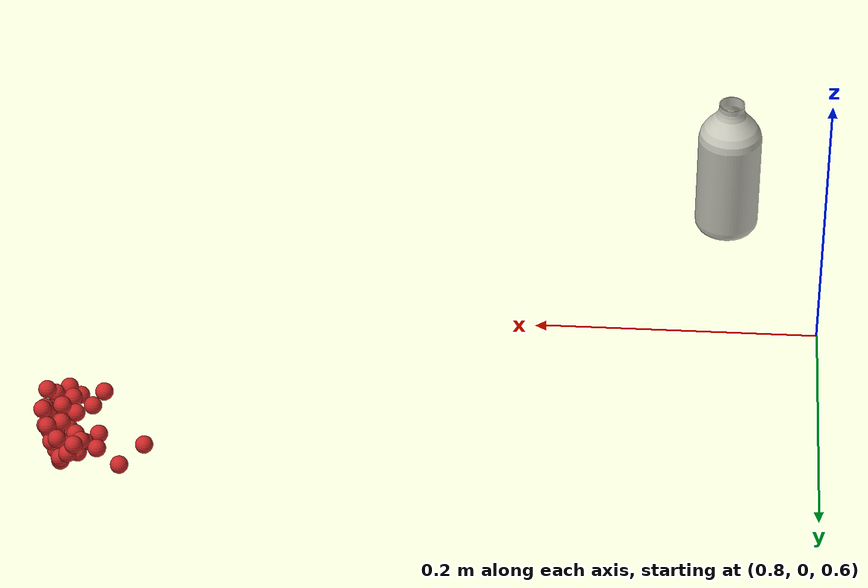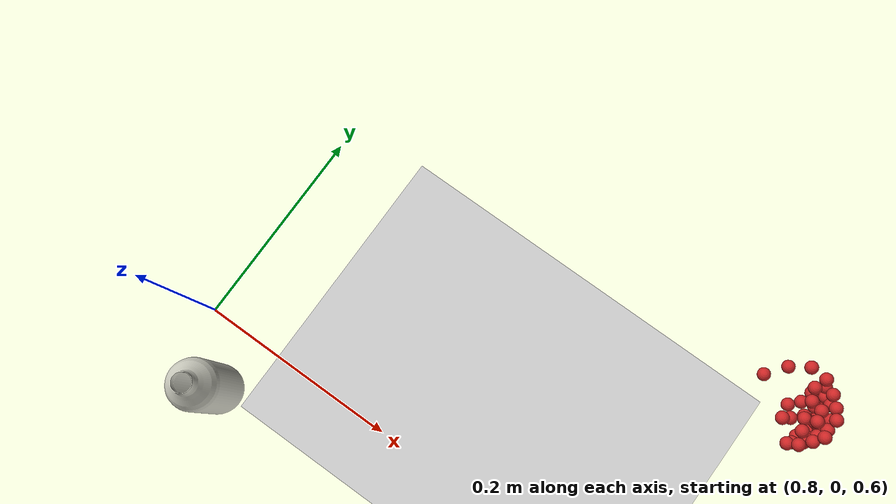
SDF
<sdf version="1.4">
 <world name="default">
  <model name="ground_plane">
   <static>1</static>
   <link name="link">
    <collision name="collision">
     <geometry><plane><normal>0 0 1</normal><size>100 100</size></plane></geometry>
     <surface><friction><ode><mu>100</mu><mu2>50</mu2></ode></friction></surface>
    </collision>
    <visual name="visual">
     <cast_shadows>0</cast_shadows>
     <geometry><plane><normal>0 0 1</normal><size>100 100</size></plane></geometry>
     <material>
      <script><uri>file://media/materials/scripts/gazebo.material</uri><name>Gazebo/Grey</name></script>
     </material>
    </visual>
    <velocity_decay><linear>0</linear><angular>0</angular></velocity_decay>
   </link>
  </model>
  <model name="milk_bottle">
   <static>0</static>
   <link name="link">
    <inertial>
     <mass>0.25</mass>
     <inertia><ixx>0</ixx><ixy>0</ixy><ixz>0</ixz><iyy>0</iyy><iyz>0</iyz><izz>0</izz></inertia>
    </inertial>
    <collision name="colision1">
     <geometry>
      <mesh><uri>model://milk_bottle/meshes/milk_bottle.dae</uri><scale>0.5 0.5 0.5</scale></mesh>
     </geometry>
    </collision>
    <visual name="visual1">
     <geometry>
      <mesh><uri>model://milk_bottle/meshes/milk_bottle.dae</uri><scale>0.5 0.5 0.5</scale></mesh>
     </geometry>
     <material>
      <script><uri>file://media/materials/scripts/gazebo.material</uri><name>Gazebo/PaintedWall</name></script>
     </material>
    </visual>
    <velocity_decay><linear>0</linear><angular>0</angular></velocity_decay>
   </link>
   <pose>0.867059 -0.048695 0.706404 -0.003132 0.001128 -0.000299</pose>
  </model>
  <model name="sphere24">
   <pose>0.023964 -0.015748 -0.15087 0.007295 -0.064638 0.002877</pose>
   <link name="link">
    <pose>1.27614 0.256149 0.746288 0 -0 0</pose>
    <inertial>
     <mass>0.001</mass>
     <inertia><ixx>0.004</ixx><ixy>0</ixy><ixz>0</ixz><iyy>0.004</iyy><iyz>0</iyz><izz>0.004</izz></inertia>
    </inertial>
    <collision name="collision">
     <surface>
      <contact><ode><kp>1e+10</kp><kd>1</kd></ode></contact>
      <friction><ode><mu>0.01</mu><mu2>0.01</mu2></ode></friction>
     </surface>
     <geometry><sphere><radius>0.006</radius></sphere></geometry>
    </collision>
    <visual name="visual">
     <geometry><sphere><radius>0.006</radius></sphere></geometry>
     <material>
      <script><uri>file://media/materials/scripts/gazebo.material</uri><name>Gazebo/Red</name></script>
     </material>
    </visual>
    <velocity_decay><linear>0</linear><angular>0</angular></velocity_decay>
   </link>
   <static>0</static>
  </model>
  <model name="sphere32">
   <pose>0.00385 -0.01906 -0.075333 0.001472 0.005182 -0.006747</pose>
   <link name="link">
    <pose>1.30014 0.244149 0.758288 0 -0 0</pose>
    <inertial>
     <mass>0.001</mass>
     <inertia><ixx>0.004</ixx><ixy>0</ixy><ixz>0</ixz><iyy>0.004</iyy><iyz>0</iyz><izz>0.004</izz></inertia>
    </inertial>
    <collision name="collision">
     <surface>
      <contact><ode><kp>1e+10</kp><kd>1</kd></ode></contact>
      <friction><ode><mu>0.01</mu><mu2>0.01</mu2></ode></friction>
     </surface>
     <geometry><sphere><radius>0.006</radius></sphere></geometry>
    </collision>
    <visual name="visual">
     <geometry><sphere><radius>0.006</radius></sphere></geometry>
     <material>
      <script><uri>file://media/materials/scripts/gazebo.material</uri><name>Gazebo/Red</name></script>
     </material>
    </visual>
    <velocity_decay><linear>0</linear><angular>0</angular></velocity_decay>
   </link>
   <static>0</static>
  </model>
  <model name="sphere33">
   <pose>0.016946 -0.005899 -0.129261 -0.011122 -0.039329 -0.001441</pose>
   <link name="link">
    <pose>1.27614 0.256149 0.758288 0 -0 0</pose>
    <inertial>
     <mass>0.001</mass>
     <inertia><ixx>0.004</ixx><ixy>0</ixy><ixz>0</ixz><iyy>0.004</iyy><iyz>0</iyz><izz>0.004</izz></inertia>
    </inertial>
    <collision name="collision">
     <surface>
      <contact><ode><kp>1e+10</kp><kd>1</kd></ode></contact>
      <friction><ode><mu>0.01</mu><mu2>0.01</mu2></ode></friction>
     </surface>
     <geometry><sphere><radius>0.006</radius></sphere></geometry>
    </collision>
    <visual name="visual">
     <geometry><sphere><radius>0.006</radius></sphere></geometry>
     <material>
      <script><uri>file://media/materials/scripts/gazebo.material</uri><name>Gazebo/Red</name></script>
     </material>
    </visual>
    <velocity_decay><linear>0</linear><angular>0</angular></velocity_decay>
   </link>
   <static>0</static>
  </model>
  <model name="sphere36">
   <pose>0.001546 -0.020254 -0.071173 -0.000125 -0.000919 0.000194</pose>
   <link name="link">
    <pose>1.27614 0.232149 0.770288 0 -0 0</pose>
    <inertial>
     <mass>0.001</mass>
     <inertia><ixx>0.004</ixx><ixy>0</ixy><ixz>0</ixz><iyy>0.004</iyy><iyz>0</iyz><izz>0.004</izz></inertia>
    </inertial>
    <collision name="collision">
     <surface>
      <contact><ode><kp>1e+10</kp><kd>1</kd></ode></contact>
      <friction><ode><mu>0.01</mu><mu2>0.01</mu2></ode></friction>
     </surface>
     <geometry><sphere><radius>0.006</radius></sphere></geometry>
    </collision>
    <visual name="visual">
     <geometry><sphere><radius>0.006</radius></sphere></geometry>
     <material>
      <script><uri>file://media/materials/scripts/gazebo.material</uri><name>Gazebo/Red</name></script>
     </material>
    </visual>
    <velocity_decay><linear>0</linear><angular>0</angular></velocity_decay>
   </link>
   <static>0</static>
  </model>
  <model name="sphere38">
   <pose>0.008312 -0.02494 -0.088484 -0.000462 -0.00288 0.000366</pose>
   <link name="link">
    <pose>1.30014 0.232149 0.770288 0 -0 0</pose>
    <inertial>
     <mass>0.001</mass>
     <inertia><ixx>0.004</ixx><ixy>0</ixy><ixz>0</ixz><iyy>0.004</iyy><iyz>0</iyz><izz>0.004</izz></inertia>
    </inertial>
    <collision name="collision">
     <surface>
      <contact><ode><kp>1e+10</kp><kd>1</kd></ode></contact>
      <friction><ode><mu>0.01</mu><mu2>0.01</mu2></ode></friction>
     </surface>
     <geometry><sphere><radius>0.006</radius></sphere></geometry>
    </collision>
    <visual name="visual">
     <geometry><sphere><radius>0.006</radius></sphere></geometry>
     <material>
      <script><uri>file://media/materials/scripts/gazebo.material</uri><name>Gazebo/Red</name></script>
     </material>
    </visual>
    <velocity_decay><linear>0</linear><angular>0</angular></velocity_decay>
   </link>
   <static>0</static>
  </model>
  <model name="sphere54">
   <pose>0.009046 -0.0143 -0.103546 0.000387 -0.001186 9e-06</pose>
   <link name="link">
    <pose>1.27614 0.232149 0.794288 0 -0 0</pose>
    <inertial>
     <mass>0.001</mass>
     <inertia><ixx>0.004</ixx><ixy>0</ixy><ixz>0</ixz><iyy>0.004</iyy><iyz>0</iyz><izz>0.004</izz></inertia>
    </inertial>
    <collision name="collision">
     <surface>
      <contact><ode><kp>1e+10</kp><kd>1</kd></ode></contact>
      <friction><ode><mu>0.01</mu><mu2>0.01</mu2></ode></friction>
     </surface>
     <geometry><sphere><radius>0.006</radius></sphere></geometry>
    </collision>
    <visual name="visual">
     <geometry><sphere><radius>0.006</radius></sphere></geometry>
     <material>
      <script><uri>file://media/materials/scripts/gazebo.material</uri><name>Gazebo/Red</name></script>
     </material>
    </visual>
    <velocity_decay><linear>0</linear><angular>0</angular></velocity_decay>
   </link>
   <static>0</static>
  </model>
  <model name="sphere59">
   <pose>0.026266 -0.044662 -0.121164 -0.012674 -0.02056 0.00122</pose>
   <link name="link">
    <pose>1.30014 0.244149 0.794288 0 -0 0</pose>
    <inertial>
     <mass>0.001</mass>
     <inertia><ixx>0.004</ixx><ixy>0</ixy><ixz>0</ixz><iyy>0.004</iyy><iyz>0</iyz><izz>0.004</izz></inertia>
    </inertial>
    <collision name="collision">
     <surface>
      <contact><ode><kp>1e+10</kp><kd>1</kd></ode></contact>
      <friction><ode><mu>0.01</mu><mu2>0.01</mu2></ode></friction>
     </surface>
     <geometry><sphere><radius>0.006</radius></sphere></geometry>
    </collision>
    <visual name="visual">
     <geometry><sphere><radius>0.006</radius></sphere></geometry>
     <material>
      <script><uri>file://media/materials/scripts/gazebo.material</uri><name>Gazebo/Red</name></script>
     </material>
    </visual>
    <velocity_decay><linear>0</linear><angular>0</angular></velocity_decay>
   </link>
   <static>0</static>
  </model>
  <model name="sphere64">
   <pose>0.007325 -0.008026 -0.116487 0.00249 -0.000644 0.001706</pose>
   <link name="link">
    <pose>1.28814 0.232149 0.806288 0 -0 0</pose>
    <inertial>
     <mass>0.001</mass>
     <inertia><ixx>0.004</ixx><ixy>0</ixy><ixz>0</ixz><iyy>0.004</iyy><iyz>0</iyz><izz>0.004</izz></inertia>
    </inertial>
    <collision name="collision">
     <surface>
      <contact><ode><kp>1e+10</kp><kd>1</kd></ode></contact>
      <friction><ode><mu>0.01</mu><mu2>0.01</mu2></ode></friction>
     </surface>
     <geometry><sphere><radius>0.006</radius></sphere></geometry>
    </collision>
    <visual name="visual">
     <geometry><sphere><radius>0.006</radius></sphere></geometry>
     <material>
      <script><uri>file://media/materials/scripts/gazebo.material</uri><name>Gazebo/Red</name></script>
     </material>
    </visual>
    <velocity_decay><linear>0</linear><angular>0</angular></velocity_decay>
   </link>
   <static>0</static>
  </model>
  <model name="sphere67">
   <pose>0.010692 -0.004601 -0.127614 -0.000764 0.000796 0.000243</pose>
   <link name="link">
    <pose>1.28814 0.244149 0.806288 0 -0 0</pose>
    <inertial>
     <mass>0.001</mass>
     <inertia><ixx>0.004</ixx><ixy>0</ixy><ixz>0</ixz><iyy>0.004</iyy><iyz>0</iyz><izz>0.004</izz></inertia>
    </inertial>
    <collision name="collision">
     <surface>
      <contact><ode><kp>1e+10</kp><kd>1</kd></ode></contact>
      <friction><ode><mu>0.01</mu><mu2>0.01</mu2></ode></friction>
     </surface>
     <geometry><sphere><radius>0.006</radius></sphere></geometry>
    </collision>
    <visual name="visual">
     <geometry><sphere><radius>0.006</radius></sphere></geometry>
     <material>
      <script><uri>file://media/materials/scripts/gazebo.material</uri><name>Gazebo/Red</name></script>
     </material>
    </visual>
    <velocity_decay><linear>0</linear><angular>0</angular></velocity_decay>
   </link>
   <static>0</static>
  </model>
  <model name="sphere68">
   <pose>0.002488 -0.028015 -0.10231 -0.001503 0.012285 0.000994</pose>
   <link name="link">
    <pose>1.30014 0.244149 0.806288 0 -0 0</pose>
    <inertial>
     <mass>0.001</mass>
     <inertia><ixx>0.004</ixx><ixy>0</ixy><ixz>0</ixz><iyy>0.004</iyy><iyz>0</iyz><izz>0.004</izz></inertia>
    </inertial>
    <collision name="collision">
     <surface>
      <contact><ode><kp>1e+10</kp><kd>1</kd></ode></contact>
      <friction><ode><mu>0.01</mu><mu2>0.01</mu2></ode></friction>
     </surface>
     <geometry><sphere><radius>0.006</radius></sphere></geometry>
    </collision>
    <visual name="visual">
     <geometry><sphere><radius>0.006</radius></sphere></geometry>
     <material>
      <script><uri>file://media/materials/scripts/gazebo.material</uri><name>Gazebo/Red</name></script>
     </material>
    </visual>
    <velocity_decay><linear>0</linear><angular>0</angular></velocity_decay>
   </link>
   <static>0</static>
  </model>
  <model name="sphere69">
   <pose>0.000638 0.006053 -0.112978 -0.000901 -0.001352 0.000382</pose>
   <link name="link">
    <pose>1.27614 0.256149 0.806288 0 -0 0</pose>
    <inertial>
     <mass>0.001</mass>
     <inertia><ixx>0.004</ixx><ixy>0</ixy><ixz>0</ixz><iyy>0.004</iyy><iyz>0</iyz><izz>0.004</izz></inertia>
    </inertial>
    <collision name="collision">
     <surface>
      <contact><ode><kp>1e+10</kp><kd>1</kd></ode></contact>
      <friction><ode><mu>0.01</mu><mu2>0.01</mu2></ode></friction>
     </surface>
     <geometry><sphere><radius>0.006</radius></sphere></geometry>
    </collision>
    <visual name="visual">
     <geometry><sphere><radius>0.006</radius></sphere></geometry>
     <material>
      <script><uri>file://media/materials/scripts/gazebo.material</uri><name>Gazebo/Red</name></script>
     </material>
    </visual>
    <velocity_decay><linear>0</linear><angular>0</angular></velocity_decay>
   </link>
   <static>0</static>
  </model>
  <model name="sphere73">
   <pose>0.005332 -0.032909 -0.130469 -0.000472 0.001716 -0.000441</pose>
   <link name="link">
    <pose>1.28814 0.232149 0.818288 0 -0 0</pose>
    <inertial>
     <mass>0.001</mass>
     <inertia><ixx>0.004</ixx><ixy>0</ixy><ixz>0</ixz><iyy>0.004</iyy><iyz>0</iyz><izz>0.004</izz></inertia>
    </inertial>
    <collision name="collision">
     <surface>
      <contact><ode><kp>1e+10</kp><kd>1</kd></ode></contact>
      <friction><ode><mu>0.01</mu><mu2>0.01</mu2></ode></friction>
     </surface>
     <geometry><sphere><radius>0.006</radius></sphere></geometry>
    </collision>
    <visual name="visual">
     <geometry><sphere><radius>0.006</radius></sphere></geometry>
     <material>
      <script><uri>file://media/materials/scripts/gazebo.material</uri><name>Gazebo/Red</name></script>
     </material>
    </visual>
    <velocity_decay><linear>0</linear><angular>0</angular></velocity_decay>
   </link>
   <static>0</static>
  </model>
  <model name="sphere74">
   <pose>0.004095 -0.031488 -0.147642 -0.003532 -0.004683 0.000137</pose>
   <link name="link">
    <pose>1.30014 0.232149 0.818288 0 -0 0</pose>
    <inertial>
     <mass>0.001</mass>
     <inertia><ixx>0.004</ixx><ixy>0</ixy><ixz>0</ixz><iyy>0.004</iyy><iyz>0</iyz><izz>0.004</izz></inertia>
    </inertial>
    <collision name="collision">
     <surface>
      <contact><ode><kp>1e+10</kp><kd>1</kd></ode></contact>
      <friction><ode><mu>0.01</mu><mu2>0.01</mu2></ode></friction>
     </surface>
     <geometry><sphere><radius>0.006</radius></sphere></geometry>
    </collision>
    <visual name="visual">
     <geometry><sphere><radius>0.006</radius></sphere></geometry>
     <material>
      <script><uri>file://media/materials/scripts/gazebo.material</uri><name>Gazebo/Red</name></script>
     </material>
    </visual>
    <velocity_decay><linear>0</linear><angular>0</angular></velocity_decay>
   </link>
   <static>0</static>
  </model>
  <model name="sphere75">
   <pose>0.003294 -0.014854 -0.14064 -0.001217 -7.3e-05 -0.001242</pose>
   <link name="link">
    <pose>1.27614 0.244149 0.818288 0 -0 0</pose>
    <inertial>
     <mass>0.001</mass>
     <inertia><ixx>0.004</ixx><ixy>0</ixy><ixz>0</ixz><iyy>0.004</iyy><iyz>0</iyz><izz>0.004</izz></inertia>
    </inertial>
    <collision name="collision">
     <surface>
      <contact><ode><kp>1e+10</kp><kd>1</kd></ode></contact>
      <friction><ode><mu>0.01</mu><mu2>0.01</mu2></ode></friction>
     </surface>
     <geometry><sphere><radius>0.006</radius></sphere></geometry>
    </collision>
    <visual name="visual">
     <geometry><sphere><radius>0.006</radius></sphere></geometry>
     <material>
      <script><uri>file://media/materials/scripts/gazebo.material</uri><name>Gazebo/Red</name></script>
     </material>
    </visual>
    <velocity_decay><linear>0</linear><angular>0</angular></velocity_decay>
   </link>
   <static>0</static>
  </model>
  <model name="sphere76">
   <pose>0.005552 -0.00272 -0.131984 0.001115 -0.000754 0.000401</pose>
   <link name="link">
    <pose>1.28814 0.244149 0.818288 0 -0 0</pose>
    <inertial>
     <mass>0.001</mass>
     <inertia><ixx>0.004</ixx><ixy>0</ixy><ixz>0</ixz><iyy>0.004</iyy><iyz>0</iyz><izz>0.004</izz></inertia>
    </inertial>
    <collision name="collision">
     <surface>
      <contact><ode><kp>1e+10</kp><kd>1</kd></ode></contact>
      <friction><ode><mu>0.01</mu><mu2>0.01</mu2></ode></friction>
     </surface>
     <geometry><sphere><radius>0.006</radius></sphere></geometry>
    </collision>
    <visual name="visual">
     <geometry><sphere><radius>0.006</radius></sphere></geometry>
     <material>
      <script><uri>file://media/materials/scripts/gazebo.material</uri><name>Gazebo/Red</name></script>
     </material>
    </visual>
    <velocity_decay><linear>0</linear><angular>0</angular></velocity_decay>
   </link>
   <static>0</static>
  </model>
  <model name="sphere77">
   <pose>0.000862 -0.017129 -0.115851 0.00082 0.002501 0.000341</pose>
   <link name="link">
    <pose>1.30014 0.244149 0.818288 0 -0 0</pose>
    <inertial>
     <mass>0.001</mass>
     <inertia><ixx>0.004</ixx><ixy>0</ixy><ixz>0</ixz><iyy>0.004</iyy><iyz>0</iyz><izz>0.004</izz></inertia>
    </inertial>
    <collision name="collision">
     <surface>
      <contact><ode><kp>1e+10</kp><kd>1</kd></ode></contact>
      <friction><ode><mu>0.01</mu><mu2>0.01</mu2></ode></friction>
     </surface>
     <geometry><sphere><radius>0.006</radius></sphere></geometry>
    </collision>
    <visual name="visual">
     <geometry><sphere><radius>0.006</radius></sphere></geometry>
     <material>
      <script><uri>file://media/materials/scripts/gazebo.material</uri><name>Gazebo/Red</name></script>
     </material>
    </visual>
    <velocity_decay><linear>0</linear><angular>0</angular></velocity_decay>
   </link>
   <static>0</static>
  </model>
  <model name="sphere80">
   <pose>0.005665 -0.044912 -0.155915 -0.000669 -0.003994 9.5e-05</pose>
   <link name="link">
    <pose>1.30014 0.256149 0.818288 0 -0 0</pose>
    <inertial>
     <mass>0.001</mass>
     <inertia><ixx>0.004</ixx><ixy>0</ixy><ixz>0</ixz><iyy>0.004</iyy><iyz>0</iyz><izz>0.004</izz></inertia>
    </inertial>
    <collision name="collision">
     <surface>
      <contact><ode><kp>1e+10</kp><kd>1</kd></ode></contact>
      <friction><ode><mu>0.01</mu><mu2>0.01</mu2></ode></friction>
     </surface>
     <geometry><sphere><radius>0.006</radius></sphere></geometry>
    </collision>
    <visual name="visual">
     <geometry><sphere><radius>0.006</radius></sphere></geometry>
     <material>
      <script><uri>file://media/materials/scripts/gazebo.material</uri><name>Gazebo/Red</name></script>
     </material>
    </visual>
    <velocity_decay><linear>0</linear><angular>0</angular></velocity_decay>
   </link>
   <static>0</static>
  </model>
  <model name="sphere83">
   <pose>0.021815 -0.018893 -0.136478 -0.003351 -0.009417 0.001673</pose>
   <link name="link">
    <pose>1.30014 0.232149 0.830288 0 -0 0</pose>
    <inertial>
     <mass>0.001</mass>
     <inertia><ixx>0.004</ixx><ixy>0</ixy><ixz>0</ixz><iyy>0.004</iyy><iyz>0</iyz><izz>0.004</izz></inertia>
    </inertial>
    <collision name="collision">
     <surface>
      <contact><ode><kp>1e+10</kp><kd>1</kd></ode></contact>
      <friction><ode><mu>0.01</mu><mu2>0.01</mu2></ode></friction>
     </surface>
     <geometry><sphere><radius>0.006</radius></sphere></geometry>
    </collision>
    <visual name="visual">
     <geometry><sphere><radius>0.006</radius></sphere></geometry>
     <material>
      <script><uri>file://media/materials/scripts/gazebo.material</uri><name>Gazebo/Red</name></script>
     </material>
    </visual>
    <velocity_decay><linear>0</linear><angular>0</angular></velocity_decay>
   </link>
   <static>0</static>
  </model>
  <model name="sphere84">
   <pose>0.021061 -0.017251 -0.153193 -0.003005 -0.00113 -0.000412</pose>
   <link name="link">
    <pose>1.27614 0.244149 0.830288 0 -0 0</pose>
    <inertial>
     <mass>0.001</mass>
     <inertia><ixx>0.004</ixx><ixy>0</ixy><ixz>0</ixz><iyy>0.004</iyy><iyz>0</iyz><izz>0.004</izz></inertia>
    </inertial>
    <collision name="collision">
     <surface>
      <contact><ode><kp>1e+10</kp><kd>1</kd></ode></contact>
      <friction><ode><mu>0.01</mu><mu2>0.01</mu2></ode></friction>
     </surface>
     <geometry><sphere><radius>0.006</radius></sphere></geometry>
    </collision>
    <visual name="visual">
     <geometry><sphere><radius>0.006</radius></sphere></geometry>
     <material>
      <script><uri>file://media/materials/scripts/gazebo.material</uri><name>Gazebo/Red</name></script>
     </material>
    </visual>
    <velocity_decay><linear>0</linear><angular>0</angular></velocity_decay>
   </link>
   <static>0</static>
  </model>
  <model name="sphere86">
   <pose>0.01408 -0.022399 -0.153693 -0.001696 -0.000857 0.003178</pose>
   <link name="link">
    <pose>1.30014 0.244149 0.830288 0 -0 0</pose>
    <inertial>
     <mass>0.001</mass>
     <inertia><ixx>0.004</ixx><ixy>0</ixy><ixz>0</ixz><iyy>0.004</iyy><iyz>0</iyz><izz>0.004</izz></inertia>
    </inertial>
    <collision name="collision">
     <surface>
      <contact><ode><kp>1e+10</kp><kd>1</kd></ode></contact>
      <friction><ode><mu>0.01</mu><mu2>0.01</mu2></ode></friction>
     </surface>
     <geometry><sphere><radius>0.006</radius></sphere></geometry>
    </collision>
    <visual name="visual">
     <geometry><sphere><radius>0.006</radius></sphere></geometry>
     <material>
      <script><uri>file://media/materials/scripts/gazebo.material</uri><name>Gazebo/Red</name></script>
     </material>
    </visual>
    <velocity_decay><linear>0</linear><angular>0</angular></velocity_decay>
   </link>
   <static>0</static>
  </model>
  <model name="sphere87">
   <pose>0.011111 -0.005887 -0.138044 -0.001909 0.000915 -0.000253</pose>
   <link name="link">
    <pose>1.27614 0.256149 0.830288 0 -0 0</pose>
    <inertial>
     <mass>0.001</mass>
     <inertia><ixx>0.004</ixx><ixy>0</ixy><ixz>0</ixz><iyy>0.004</iyy><iyz>0</iyz><izz>0.004</izz></inertia>
    </inertial>
    <collision name="collision">
     <surface>
      <contact><ode><kp>1e+10</kp><kd>1</kd></ode></contact>
      <friction><ode><mu>0.01</mu><mu2>0.01</mu2></ode></friction>
     </surface>
     <geometry><sphere><radius>0.006</radius></sphere></geometry>
    </collision>
    <visual name="visual">
     <geometry><sphere><radius>0.006</radius></sphere></geometry>
     <material>
      <script><uri>file://media/materials/scripts/gazebo.material</uri><name>Gazebo/Red</name></script>
     </material>
    </visual>
    <velocity_decay><linear>0</linear><angular>0</angular></velocity_decay>
   </link>
   <static>0</static>
  </model>
  <model name="sphere89">
   <pose>0.002118 -0.042339 -0.146907 -0.026311 0.006848 -0.000773</pose>
   <link name="link">
    <pose>1.30014 0.256149 0.830288 0 -0 0</pose>
    <inertial>
     <mass>0.001</mass>
     <inertia><ixx>0.004</ixx><ixy>0</ixy><ixz>0</ixz><iyy>0.004</iyy><iyz>0</iyz><izz>0.004</izz></inertia>
    </inertial>
    <collision name="collision">
     <surface>
      <contact><ode><kp>1e+10</kp><kd>1</kd></ode></contact>
      <friction><ode><mu>0.01</mu><mu2>0.01</mu2></ode></friction>
     </surface>
     <geometry><sphere><radius>0.006</radius></sphere></geometry>
    </collision>
    <visual name="visual">
     <geometry><sphere><radius>0.006</radius></sphere></geometry>
     <material>
      <script><uri>file://media/materials/scripts/gazebo.material</uri><name>Gazebo/Red</name></script>
     </material>
    </visual>
    <velocity_decay><linear>0</linear><angular>0</angular></velocity_decay>
   </link>
   <static>0</static>
  </model>
  <model name="sphere91">
   <pose>0.008575 -0.018703 -0.145343 -7.4e-05 0.001094 2.8e-05</pose>
   <link name="link">
    <pose>1.28814 0.232149 0.842288 0 -0 0</pose>
    <inertial>
     <mass>0.001</mass>
     <inertia><ixx>0.004</ixx><ixy>0</ixy><ixz>0</ixz><iyy>0.004</iyy><iyz>0</iyz><izz>0.004</izz></inertia>
    </inertial>
    <collision name="collision">
     <surface>
      <contact><ode><kp>1e+10</kp><kd>1</kd></ode></contact>
      <friction><ode><mu>0.01</mu><mu2>0.01</mu2></ode></friction>
     </surface>
     <geometry><sphere><radius>0.006</radius></sphere></geometry>
    </collision>
    <visual name="visual">
     <geometry><sphere><radius>0.006</radius></sphere></geometry>
     <material>
      <script><uri>file://media/materials/scripts/gazebo.material</uri><name>Gazebo/Red</name></script>
     </material>
    </visual>
    <velocity_decay><linear>0</linear><angular>0</angular></velocity_decay>
   </link>
   <static>0</static>
  </model>
  <model name="sphere92">
   <pose>0.003157 -0.027694 -0.150584 0.002561 -0.002022 -2.5e-05</pose>
   <link name="link">
    <pose>1.30014 0.232149 0.842288 0 -0 0</pose>
    <inertial>
     <mass>0.001</mass>
     <inertia><ixx>0.004</ixx><ixy>0</ixy><ixz>0</ixz><iyy>0.004</iyy><iyz>0</iyz><izz>0.004</izz></inertia>
    </inertial>
    <collision name="collision">
     <surface>
      <contact><ode><kp>1e+10</kp><kd>1</kd></ode></contact>
      <friction><ode><mu>0.01</mu><mu2>0.01</mu2></ode></friction>
     </surface>
     <geometry><sphere><radius>0.006</radius></sphere></geometry>
    </collision>
    <visual name="visual">
     <geometry><sphere><radius>0.006</radius></sphere></geometry>
     <material>
      <script><uri>file://media/materials/scripts/gazebo.material</uri><name>Gazebo/Red</name></script>
     </material>
    </visual>
    <velocity_decay><linear>0</linear><angular>0</angular></velocity_decay>
   </link>
   <static>0</static>
  </model>
  <model name="sphere94">
   <pose>0.005039 8.9e-05 -0.16624 -0.002726 -0.002055 0.001858</pose>
   <link name="link">
    <pose>1.28814 0.244149 0.842288 0 -0 0</pose>
    <inertial>
     <mass>0.001</mass>
     <inertia><ixx>0.004</ixx><ixy>0</ixy><ixz>0</ixz><iyy>0.004</iyy><iyz>0</iyz><izz>0.004</izz></inertia>
    </inertial>
    <collision name="collision">
     <surface>
      <contact><ode><kp>1e+10</kp><kd>1</kd></ode></contact>
      <friction><ode><mu>0.01</mu><mu2>0.01</mu2></ode></friction>
     </surface>
     <geometry><sphere><radius>0.006</radius></sphere></geometry>
    </collision>
    <visual name="visual">
     <geometry><sphere><radius>0.006</radius></sphere></geometry>
     <material>
      <script><uri>file://media/materials/scripts/gazebo.material</uri><name>Gazebo/Red</name></script>
     </material>
    </visual>
    <velocity_decay><linear>0</linear><angular>0</angular></velocity_decay>
   </link>
   <static>0</static>
  </model>
  <model name="sphere95">
   <pose>0.001412 -0.007872 -0.146601 -0.000907 0.001141 0.000346</pose>
   <link name="link">
    <pose>1.30014 0.244149 0.842288 0 -0 0</pose>
    <inertial>
     <mass>0.001</mass>
     <inertia><ixx>0.004</ixx><ixy>0</ixy><ixz>0</ixz><iyy>0.004</iyy><iyz>0</iyz><izz>0.004</izz></inertia>
    </inertial>
    <collision name="collision">
     <surface>
      <contact><ode><kp>1e+10</kp><kd>1</kd></ode></contact>
      <friction><ode><mu>0.01</mu><mu2>0.01</mu2></ode></friction>
     </surface>
     <geometry><sphere><radius>0.006</radius></sphere></geometry>
    </collision>
    <visual name="visual">
     <geometry><sphere><radius>0.006</radius></sphere></geometry>
     <material>
      <script><uri>file://media/materials/scripts/gazebo.material</uri><name>Gazebo/Red</name></script>
     </material>
    </visual>
    <velocity_decay><linear>0</linear><angular>0</angular></velocity_decay>
   </link>
   <static>0</static>
  </model>
  <model name="sphere96">
   <pose>0.015056 0.006851 -0.147047 0.00168 -1.8e-05 0.000281</pose>
   <link name="link">
    <pose>1.27614 0.256149 0.842288 0 -0 0</pose>
    <inertial>
     <mass>0.001</mass>
     <inertia><ixx>0.004</ixx><ixy>0</ixy><ixz>0</ixz><iyy>0.004</iyy><iyz>0</iyz><izz>0.004</izz></inertia>
    </inertial>
    <collision name="collision">
     <surface>
      <contact><ode><kp>1e+10</kp><kd>1</kd></ode></contact>
      <friction><ode><mu>0.01</mu><mu2>0.01</mu2></ode></friction>
     </surface>
     <geometry><sphere><radius>0.006</radius></sphere></geometry>
    </collision>
    <visual name="visual">
     <geometry><sphere><radius>0.006</radius></sphere></geometry>
     <material>
      <script><uri>file://media/materials/scripts/gazebo.material</uri><name>Gazebo/Red</name></script>
     </material>
    </visual>
    <velocity_decay><linear>0</linear><angular>0</angular></velocity_decay>
   </link>
   <static>0</static>
  </model>
  <model name="sphere99">
   <pose>0.012453 0.004584 -0.177797 -0.0019 -0.000962 -0.000747</pose>
   <link name="link">
    <pose>1.27614 0.232149 0.854288 0 -0 0</pose>
    <inertial>
     <mass>0.001</mass>
     <inertia><ixx>0.004</ixx><ixy>0</ixy><ixz>0</ixz><iyy>0.004</iyy><iyz>0</iyz><izz>0.004</izz></inertia>
    </inertial>
    <collision name="collision">
     <surface>
      <contact><ode><kp>1e+10</kp><kd>1</kd></ode></contact>
      <friction><ode><mu>0.01</mu><mu2>0.01</mu2></ode></friction>
     </surface>
     <geometry><sphere><radius>0.006</radius></sphere></geometry>
    </collision>
    <visual name="visual">
     <geometry><sphere><radius>0.006</radius></sphere></geometry>
     <material>
      <script><uri>file://media/materials/scripts/gazebo.material</uri><name>Gazebo/Red</name></script>
     </material>
    </visual>
    <velocity_decay><linear>0</linear><angular>0</angular></velocity_decay>
   </link>
   <static>0</static>
  </model>
  <model name="sphere101">
   <pose>0.017056 -0.008491 -0.161042 -0.002048 -0.002846 0.000721</pose>
   <link name="link">
    <pose>1.30014 0.232149 0.854288 0 -0 0</pose>
    <inertial>
     <mass>0.001</mass>
     <inertia><ixx>0.004</ixx><ixy>0</ixy><ixz>0</ixz><iyy>0.004</iyy><iyz>0</iyz><izz>0.004</izz></inertia>
    </inertial>
    <collision name="collision">
     <surface>
      <contact><ode><kp>1e+10</kp><kd>1</kd></ode></contact>
      <friction><ode><mu>0.01</mu><mu2>0.01</mu2></ode></friction>
     </surface>
     <geometry><sphere><radius>0.006</radius></sphere></geometry>
    </collision>
    <visual name="visual">
     <geometry><sphere><radius>0.006</radius></sphere></geometry>
     <material>
      <script><uri>file://media/materials/scripts/gazebo.material</uri><name>Gazebo/Red</name></script>
     </material>
    </visual>
    <velocity_decay><linear>0</linear><angular>0</angular></velocity_decay>
   </link>
   <static>0</static>
  </model>
  <model name="sphere102">
   <pose>0.029567 0.012125 -0.164463 0.001754 -0.003011 -7.3e-05</pose>
   <link name="link">
    <pose>1.27614 0.244149 0.854288 0 -0 0</pose>
    <inertial>
     <mass>0.001</mass>
     <inertia><ixx>0.004</ixx><ixy>0</ixy><ixz>0</ixz><iyy>0.004</iyy><iyz>0</iyz><izz>0.004</izz></inertia>
    </inertial>
    <collision name="collision">
     <surface>
      <contact><ode><kp>1e+10</kp><kd>1</kd></ode></contact>
      <friction><ode><mu>0.01</mu><mu2>0.01</mu2></ode></friction>
     </surface>
     <geometry><sphere><radius>0.006</radius></sphere></geometry>
    </collision>
    <visual name="visual">
     <geometry><sphere><radius>0.006</radius></sphere></geometry>
     <material>
      <script><uri>file://media/materials/scripts/gazebo.material</uri><name>Gazebo/Red</name></script>
     </material>
    </visual>
    <velocity_decay><linear>0</linear><angular>0</angular></velocity_decay>
   </link>
   <static>0</static>
  </model>
  <model name="sphere104">
   <pose>0.034341 -0.022809 -0.225857 -0.002443 -0.030726 -0.000583</pose>
   <link name="link">
    <pose>1.30014 0.244149 0.854288 0 -0 0</pose>
    <inertial>
     <mass>0.001</mass>
     <inertia><ixx>0.004</ixx><ixy>0</ixy><ixz>0</ixz><iyy>0.004</iyy><iyz>0</iyz><izz>0.004</izz></inertia>
    </inertial>
    <collision name="collision">
     <surface>
      <contact><ode><kp>1e+10</kp><kd>1</kd></ode></contact>
      <friction><ode><mu>0.01</mu><mu2>0.01</mu2></ode></friction>
     </surface>
     <geometry><sphere><radius>0.006</radius></sphere></geometry>
    </collision>
    <visual name="visual">
     <geometry><sphere><radius>0.006</radius></sphere></geometry>
     <material>
      <script><uri>file://media/materials/scripts/gazebo.material</uri><name>Gazebo/Red</name></script>
     </material>
    </visual>
    <velocity_decay><linear>0</linear><angular>0</angular></velocity_decay>
   </link>
   <static>0</static>
  </model>
  <model name="sphere106">
   <pose>0.007498 -0.019688 -0.162262 -0.012038 0.009438 0.004977</pose>
   <link name="link">
    <pose>1.28814 0.256149 0.854288 0 -0 0</pose>
    <inertial>
     <mass>0.001</mass>
     <inertia><ixx>0.004</ixx><ixy>0</ixy><ixz>0</ixz><iyy>0.004</iyy><iyz>0</iyz><izz>0.004</izz></inertia>
    </inertial>
    <collision name="collision">
     <surface>
      <contact><ode><kp>1e+10</kp><kd>1</kd></ode></contact>
      <friction><ode><mu>0.01</mu><mu2>0.01</mu2></ode></friction>
     </surface>
     <geometry><sphere><radius>0.006</radius></sphere></geometry>
    </collision>
    <visual name="visual">
     <geometry><sphere><radius>0.006</radius></sphere></geometry>
     <material>
      <script><uri>file://media/materials/scripts/gazebo.material</uri><name>Gazebo/Red</name></script>
     </material>
    </visual>
    <velocity_decay><linear>0</linear><angular>0</angular></velocity_decay>
   </link>
   <static>0</static>
  </model>
  <model name="sphere107">
   <pose>0.004489 -0.015337 -0.187146 -0.004673 -0.001144 0.000647</pose>
   <link name="link">
    <pose>1.30014 0.256149 0.854288 0 -0 0</pose>
    <inertial>
     <mass>0.001</mass>
     <inertia><ixx>0.004</ixx><ixy>0</ixy><ixz>0</ixz><iyy>0.004</iyy><iyz>0</iyz><izz>0.004</izz></inertia>
    </inertial>
    <collision name="collision">
     <surface>
      <contact><ode><kp>1e+10</kp><kd>1</kd></ode></contact>
      <friction><ode><mu>0.01</mu><mu2>0.01</mu2></ode></friction>
     </surface>
     <geometry><sphere><radius>0.006</radius></sphere></geometry>
    </collision>
    <visual name="visual">
     <geometry><sphere><radius>0.006</radius></sphere></geometry>
     <material>
      <script><uri>file://media/materials/scripts/gazebo.material</uri><name>Gazebo/Red</name></script>
     </material>
    </visual>
    <velocity_decay><linear>0</linear><angular>0</angular></velocity_decay>
   </link>
   <static>0</static>
  </model>
  <model name="sphere109">
   <pose>0.016562 -0.005524 -0.179454 -0.001856 0.000109 -0.000151</pose>
   <link name="link">
    <pose>1.28814 0.232149 0.866288 0 -0 0</pose>
    <inertial>
     <mass>0.001</mass>
     <inertia><ixx>0.004</ixx><ixy>0</ixy><ixz>0</ixz><iyy>0.004</iyy><iyz>0</iyz><izz>0.004</izz></inertia>
    </inertial>
    <collision name="collision">
     <surface>
      <contact><ode><kp>1e+10</kp><kd>1</kd></ode></contact>
      <friction><ode><mu>0.01</mu><mu2>0.01</mu2></ode></friction>
     </surface>
     <geometry><sphere><radius>0.006</radius></sphere></geometry>
    </collision>
    <visual name="visual">
     <geometry><sphere><radius>0.006</radius></sphere></geometry>
     <material>
      <script><uri>file://media/materials/scripts/gazebo.material</uri><name>Gazebo/Red</name></script>
     </material>
    </visual>
    <velocity_decay><linear>0</linear><angular>0</angular></velocity_decay>
   </link>
   <static>0</static>
  </model>
  <model name="sphere110">
   <pose>0.01547 0.000661 -0.163759 -0.001915 -0.000867 0.001346</pose>
   <link name="link">
    <pose>1.30014 0.232149 0.866288 0 -0 0</pose>
    <inertial>
     <mass>0.001</mass>
     <inertia><ixx>0.004</ixx><ixy>0</ixy><ixz>0</ixz><iyy>0.004</iyy><iyz>0</iyz><izz>0.004</izz></inertia>
    </inertial>
    <collision name="collision">
     <surface>
      <contact><ode><kp>1e+10</kp><kd>1</kd></ode></contact>
      <friction><ode><mu>0.01</mu><mu2>0.01</mu2></ode></friction>
     </surface>
     <geometry><sphere><radius>0.006</radius></sphere></geometry>
    </collision>
    <visual name="visual">
     <geometry><sphere><radius>0.006</radius></sphere></geometry>
     <material>
      <script><uri>file://media/materials/scripts/gazebo.material</uri><name>Gazebo/Red</name></script>
     </material>
    </visual>
    <velocity_decay><linear>0</linear><angular>0</angular></velocity_decay>
   </link>
   <static>0</static>
  </model>
  <model name="sphere112">
   <pose>0.024003 0.001958 -0.171582 0.001272 -0.001692 0.000613</pose>
   <link name="link">
    <pose>1.28814 0.244149 0.866288 0 -0 0</pose>
    <inertial>
     <mass>0.001</mass>
     <inertia><ixx>0.004</ixx><ixy>0</ixy><ixz>0</ixz><iyy>0.004</iyy><iyz>0</iyz><izz>0.004</izz></inertia>
    </inertial>
    <collision name="collision">
     <surface>
      <contact><ode><kp>1e+10</kp><kd>1</kd></ode></contact>
      <friction><ode><mu>0.01</mu><mu2>0.01</mu2></ode></friction>
     </surface>
     <geometry><sphere><radius>0.006</radius></sphere></geometry>
    </collision>
    <visual name="visual">
     <geometry><sphere><radius>0.006</radius></sphere></geometry>
     <material>
      <script><uri>file://media/materials/scripts/gazebo.material</uri><name>Gazebo/Red</name></script>
     </material>
    </visual>
    <velocity_decay><linear>0</linear><angular>0</angular></velocity_decay>
   </link>
   <static>0</static>
  </model>
  <model name="sphere113">
   <pose>0.01649 -0.008663 -0.18175 0.000528 -0.0036 0.00065</pose>
   <link name="link">
    <pose>1.30014 0.244149 0.866288 0 -0 0</pose>
    <inertial>
     <mass>0.001</mass>
     <inertia><ixx>0.004</ixx><ixy>0</ixy><ixz>0</ixz><iyy>0.004</iyy><iyz>0</iyz><izz>0.004</izz></inertia>
    </inertial>
    <collision name="collision">
     <surface>
      <contact><ode><kp>1e+10</kp><kd>1</kd></ode></contact>
      <friction><ode><mu>0.01</mu><mu2>0.01</mu2></ode></friction>
     </surface>
     <geometry><sphere><radius>0.006</radius></sphere></geometry>
    </collision>
    <visual name="visual">
     <geometry><sphere><radius>0.006</radius></sphere></geometry>
     <material>
      <script><uri>file://media/materials/scripts/gazebo.material</uri><name>Gazebo/Red</name></script>
     </material>
    </visual>
    <velocity_decay><linear>0</linear><angular>0</angular></velocity_decay>
   </link>
   <static>0</static>
  </model>
  <model name="sphere114">
   <pose>0.020355 0.006973 -0.182921 0.003679 -0.00076 -0.000953</pose>
   <link name="link">
    <pose>1.27614 0.256149 0.866288 0 -0 0</pose>
    <inertial>
     <mass>0.001</mass>
     <inertia><ixx>0.004</ixx><ixy>0</ixy><ixz>0</ixz><iyy>0.004</iyy><iyz>0</iyz><izz>0.004</izz></inertia>
    </inertial>
    <collision name="collision">
     <surface>
      <contact><ode><kp>1e+10</kp><kd>1</kd></ode></contact>
      <friction><ode><mu>0.01</mu><mu2>0.01</mu2></ode></friction>
     </surface>
     <geometry><sphere><radius>0.006</radius></sphere></geometry>
    </collision>
    <visual name="visual">
     <geometry><sphere><radius>0.006</radius></sphere></geometry>
     <material>
      <script><uri>file://media/materials/scripts/gazebo.material</uri><name>Gazebo/Red</name></script>
     </material>
    </visual>
    <velocity_decay><linear>0</linear><angular>0</angular></velocity_decay>
   </link>
   <static>0</static>
  </model>
  <model name="sphere115">
   <pose>0.026144 0.000955 -0.192465 0.0067 -0.007903 -0.002775</pose>
   <link name="link">
    <pose>1.28814 0.256149 0.866288 0 -0 0</pose>
    <inertial>
     <mass>0.001</mass>
     <inertia><ixx>0.004</ixx><ixy>0</ixy><ixz>0</ixz><iyy>0.004</iyy><iyz>0</iyz><izz>0.004</izz></inertia>
    </inertial>
    <collision name="collision">
     <surface>
      <contact><ode><kp>1e+10</kp><kd>1</kd></ode></contact>
      <friction><ode><mu>0.01</mu><mu2>0.01</mu2></ode></friction>
     </surface>
     <geometry><sphere><radius>0.006</radius></sphere></geometry>
    </collision>
    <visual name="visual">
     <geometry><sphere><radius>0.006</radius></sphere></geometry>
     <material>
      <script><uri>file://media/materials/scripts/gazebo.material</uri><name>Gazebo/Red</name></script>
     </material>
    </visual>
    <velocity_decay><linear>0</linear><angular>0</angular></velocity_decay>
   </link>
   <static>0</static>
  </model>
 </world>
</sdf>
